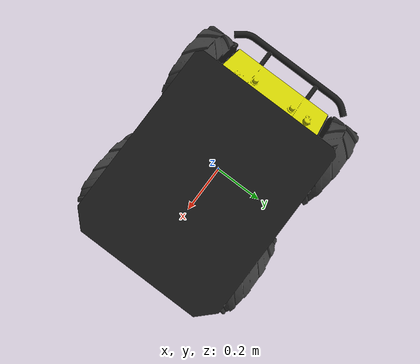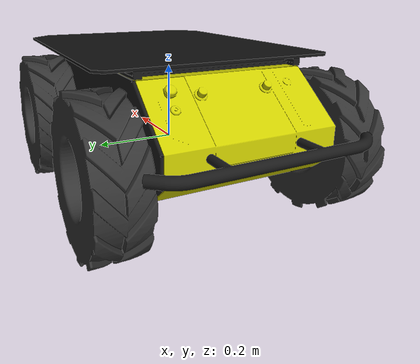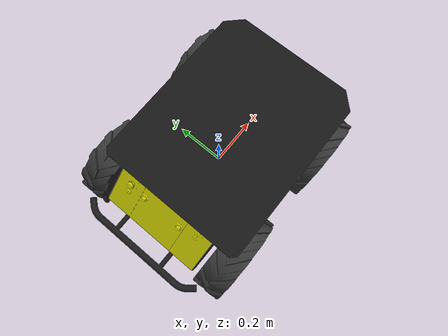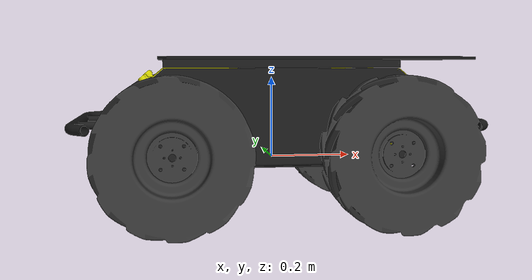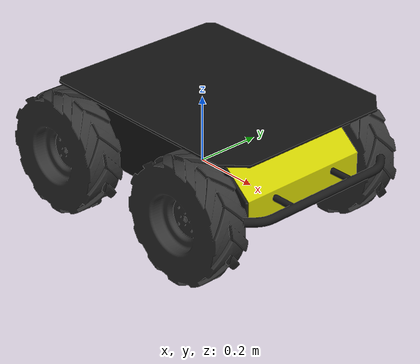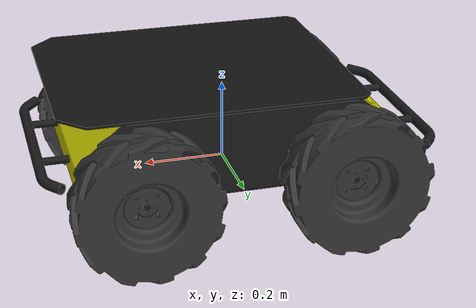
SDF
<?xml version='1.0'?>

<sdf version='1.7'>
  <model name='husky'>
    <link name='base_link'>
      <inertial>
        <pose>-0.00065 -0.085 0.062 0 -0 0</pose>
        <mass>46.034</mass>
        <inertia>
          <ixx>0.6022</ixx>
          <ixy>-0.02364</ixy>
          <ixz>-0.1197</ixz>
          <iyy>1.7386</iyy>
          <iyz>-0.001544</iyz>
          <izz>2.0296</izz>
        </inertia>
      </inertial>
      <collision name='base_link_collision'>
        <pose>0 0 0.061875 0 -0 0</pose>
        <geometry>
          <box>
            <size>0.9874 0.5709 0.12375</size>
          </box>
        </geometry>
      </collision>
      <collision name='base_link_collision_1'>
        <pose>0 0 0.175625 0 -0 0</pose>
        <geometry>
          <box>
            <size>0.78992 0.5709 0.10375</size>
          </box>
        </geometry>
      </collision>
      <collision name='base_link_fixed_joint_lump__top_plate_link_collision_2'>
        <pose>0.0812 0 0.245 0 -0 0</pose>
        <geometry>
          <mesh>
            <scale>1 1 1</scale>
            <uri>model://husky/meshes/top_plate.stl</uri>
          </mesh>
        </geometry>
      </collision>
      <visual name='base_link_visual'>
        <pose>0 0 0 0 -0 0</pose>
        <geometry>
          <mesh>
            <scale>1 1 1</scale>
            <uri>model://husky/meshes/base_link.dae</uri>
          </mesh>
        </geometry>
      </visual>
      <visual name='base_link_fixed_joint_lump__front_bumper_link_visual_1'>
        <pose>0.48 0 0.091 0 -0 0</pose>
        <geometry>
          <mesh>
            <scale>1 1 1</scale>
            <uri>model://husky/meshes/bumper.dae</uri>
          </mesh>
        </geometry>
      </visual>
      <visual name='base_link_fixed_joint_lump__rear_bumper_link_visual_2'>
        <pose>-0.48 0 0.091 0 -0 3.14159</pose>
        <geometry>
          <mesh>
            <scale>1 1 1</scale>
            <uri>model://husky/meshes/bumper.dae</uri>
          </mesh>
        </geometry>
      </visual>
      <visual name='base_link_fixed_joint_lump__top_chassis_link_visual_3'>
        <pose>0 0 0 0 -0 0</pose>
        <geometry>
          <mesh>
            <scale>1 1 1</scale>
            <uri>model://husky/meshes/top_chassis.dae</uri>
          </mesh>
        </geometry>
      </visual>
      <visual name='base_link_fixed_joint_lump__top_plate_link_visual_4'>
        <pose>0.0812 0 0.245 0 -0 0</pose>
        <geometry>
          <mesh>
            <scale>1 1 1</scale>
            <uri>model://husky/meshes/top_plate.dae</uri>
          </mesh>
        </geometry>
      </visual>
      <visual name='base_link_fixed_joint_lump__user_rail_link_visual_5'>
        <pose>0.272 0 0.245 0 -0 0</pose>
        <geometry>
          <mesh>
            <scale>1 1 1</scale>
            <uri>model://husky/meshes/user_rail.dae</uri>
          </mesh>
        </geometry>
      </visual>
    </link>
    <joint name='front_left_wheel_joint' type='revolute'>
      <pose relative_to='base_link'>0.256 0.2854 0.03282 0 -0 0</pose>
      <parent>base_link</parent>
      <child>front_left_wheel</child>
      <axis>
        <xyz>0 1 0</xyz>
        <limit>
          <lower>-1e+16</lower>
          <upper>1e+16</upper>
        </limit>
        <dynamics>
          <spring_reference>0</spring_reference>
          <spring_stiffness>0</spring_stiffness>
        </dynamics>
      </axis>
    </joint>
    <link name='front_left_wheel'>
      <pose relative_to='front_left_wheel_joint'>0 0 0 0 -0 0</pose>
      <inertial>
        <pose>0 0 0 0 -0 0</pose>
        <mass>2.637</mass>
        <inertia>
          <ixx>0.02467</ixx>
          <ixy>0</ixy>
          <ixz>0</ixz>
          <iyy>0.04411</iyy>
          <iyz>0</iyz>
          <izz>0.02467</izz>
        </inertia>
      </inertial>
      <collision name='front_left_wheel_collision'>
        <pose>0 0 0 1.57079 -0 0</pose>
        <geometry>
          <cylinder>
            <length>0.1143</length>
            <radius>0.1651</radius>
          </cylinder>
        </geometry>
        <surface>
          <contact>
            <ode>
              <kp>1e+07</kp>
              <kd>1</kd>
            </ode>
          </contact>
          <friction>
            <ode>
              <mu>1</mu>
              <mu2>0.5</mu2>
              <fdir1>1 0 0</fdir1>
            </ode>
          </friction>
        </surface>
      </collision>
      <visual name='front_left_wheel_visual'>
        <pose>0 0 0 0 -0 0</pose>
        <geometry>
          <mesh>
            <scale>1 1 1</scale>
            <uri>model://husky/meshes/wheel.dae</uri>
          </mesh>
        </geometry>
      </visual>
    </link>
    <joint name='front_right_wheel_joint' type='revolute'>
      <pose relative_to='base_link'>0.256 -0.2854 0.03282 0 -0 0</pose>
      <parent>base_link</parent>
      <child>front_right_wheel</child>
      <axis>
        <xyz>0 1 0</xyz>
        <limit>
          <lower>-1e+16</lower>
          <upper>1e+16</upper>
        </limit>
        <dynamics>
          <spring_reference>0</spring_reference>
          <spring_stiffness>0</spring_stiffness>
        </dynamics>
      </axis>
    </joint>
    <link name='front_right_wheel'>
      <pose relative_to='front_right_wheel_joint'>0 0 0 0 -0 0</pose>
      <inertial>
        <pose>0 0 0 0 -0 0</pose>
        <mass>2.637</mass>
        <inertia>
          <ixx>0.02467</ixx>
          <ixy>0</ixy>
          <ixz>0</ixz>
          <iyy>0.04411</iyy>
          <iyz>0</iyz>
          <izz>0.02467</izz>
        </inertia>
      </inertial>
      <collision name='front_right_wheel_collision'>
        <pose>0 0 0 1.57079 -0 0</pose>
        <geometry>
          <cylinder>
            <length>0.1143</length>
            <radius>0.1651</radius>
          </cylinder>
        </geometry>
        <surface>
          <contact>
            <ode>
              <kp>1e+07</kp>
              <kd>1</kd>
            </ode>
          </contact>
          <friction>
            <ode>
              <mu>1</mu>
              <mu2>0.5</mu2>
              <fdir1>1 0 0</fdir1>
            </ode>
          </friction>
        </surface>
      </collision>
      <visual name='front_right_wheel_visual'>
        <pose>0 0 0 0 -0 0</pose>
        <geometry>
          <mesh>
            <scale>1 1 1</scale>
            <uri>model://husky/meshes/wheel.dae</uri>
          </mesh>
        </geometry>
      </visual>
    </link>
    <joint name='rear_left_wheel_joint' type='revolute'>
      <pose relative_to='base_link'>-0.256 0.2854 0.03282 0 -0 0</pose>
      <parent>base_link</parent>
      <child>rear_left_wheel</child>
      <axis>
        <xyz>0 1 0</xyz>
        <limit>
          <lower>-1e+16</lower>
          <upper>1e+16</upper>
        </limit>
        <dynamics>
          <spring_reference>0</spring_reference>
          <spring_stiffness>0</spring_stiffness>
        </dynamics>
      </axis>
    </joint>
    <link name='rear_left_wheel'>
      <pose relative_to='rear_left_wheel_joint'>0 0 0 0 -0 0</pose>
      <inertial>
        <pose>0 0 0 0 -0 0</pose>
        <mass>2.637</mass>
        <inertia>
          <ixx>0.02467</ixx>
          <ixy>0</ixy>
          <ixz>0</ixz>
          <iyy>0.04411</iyy>
          <iyz>0</iyz>
          <izz>0.02467</izz>
        </inertia>
      </inertial>
      <collision name='rear_left_wheel_collision'>
        <pose>0 0 0 1.57079 -0 0</pose>
        <geometry>
          <cylinder>
            <length>0.1143</length>
            <radius>0.1651</radius>
          </cylinder>
        </geometry>
        <surface>
          <contact>
            <ode>
              <kp>1e+07</kp>
              <kd>1</kd>
            </ode>
          </contact>
          <friction>
            <ode>
              <mu>1</mu>
              <mu2>0.5</mu2>
              <fdir1>1 0 0</fdir1>
            </ode>
          </friction>
        </surface>
      </collision>
      <visual name='rear_left_wheel_visual'>
        <pose>0 0 0 0 -0 0</pose>
        <geometry>
          <mesh>
            <scale>1 1 1</scale>
            <uri>model://husky/meshes/wheel.dae</uri>
          </mesh>
        </geometry>
      </visual>
    </link>
    <joint name='rear_right_wheel_joint' type='revolute'>
      <pose relative_to='base_link'>-0.256 -0.2854 0.03282 0 -0 0</pose>
      <parent>base_link</parent>
      <child>rear_right_wheel</child>
      <axis>
        <xyz>0 1 0</xyz>
        <limit>
          <lower>-1e+16</lower>
          <upper>1e+16</upper>
        </limit>
        <dynamics>
          <spring_reference>0</spring_reference>
          <spring_stiffness>0</spring_stiffness>
        </dynamics>
      </axis>
    </joint>
    <link name='rear_right_wheel'>
      <pose relative_to='rear_right_wheel_joint'>0 0 0 0 -0 0</pose>
      <inertial>
        <pose>0 0 0 0 -0 0</pose>
        <mass>2.637</mass>
        <inertia>
          <ixx>0.02467</ixx>
          <ixy>0</ixy>
          <ixz>0</ixz>
          <iyy>0.04411</iyy>
          <iyz>0</iyz>
          <izz>0.02467</izz>
        </inertia>
      </inertial>
      <collision name='rear_right_wheel_collision'>
        <pose>0 0 0 1.57079 -0 0</pose>
        <geometry>
          <cylinder>
            <length>0.1143</length>
            <radius>0.1651</radius>
          </cylinder>
        </geometry>
        <surface>
          <contact>
            <ode>
              <kp>1e+07</kp>
              <kd>1</kd>
            </ode>
          </contact>
          <friction>
            <ode>
              <mu>1</mu>
              <mu2>0.5</mu2>
              <fdir1>1 0 0</fdir1>
            </ode>
          </friction>
        </surface>
      </collision>
      <visual name='rear_right_wheel_visual'>
        <pose>0 0 0 0 -0 0</pose>
        <geometry>
          <mesh>
            <scale>1 1 1</scale>
            <uri>model://husky/meshes/wheel.dae</uri>
          </mesh>
        </geometry>
      </visual>
    </link>
    <!-- Skid steering drive plugin -->
    <plugin name="diff_drive" filename="libgazebo_ros_diff_drive.so">

      <!-- ros related arguments -->
      <ros>
        <namespace>/demo</namespace>
        <arguments>--ros-args --remap cmd_vel:=cmd_vel</arguments>
        <arguments>--ros-args --remap odom:=odom</arguments>
      </ros>

      <!-- Number of wheel pairs -->
      <num_wheel_pairs>2</num_wheel_pairs>

      <!-- wheel0 -->
      <left_joint>front_left_wheel_joint</left_joint>
      <right_joint>front_right_wheel_joint</right_joint>

      <!-- wheel1 -->
      <left_joint>rear_left_wheel_joint</left_joint>
      <right_joint>rear_right_wheel_joint</right_joint>

      <!-- wheel kinematics -->
      <wheel_separation>0.3708</wheel_separation>
      <wheel_separation>0.3708</wheel_separation>

      <wheel_diameter>0.3302</wheel_diameter>
      <wheel_diameter>0.3302</wheel_diameter>

      <!-- limits -->
      <max_wheel_torque>20</max_wheel_torque>
      <max_wheel_acceleration>1.0</max_wheel_acceleration>
      <max_wheel_speed>20</max_wheel_speed>

      <!-- output -->
      <publish_odom>true</publish_odom>
      <publish_odom_tf>true</publish_odom_tf>
      <publish_wheel_tf>true</publish_wheel_tf>

      <odometry_frame>odom</odometry_frame>
      <robot_base_frame>base_link</robot_base_frame>
    </plugin>
  </model>
</sdf>
